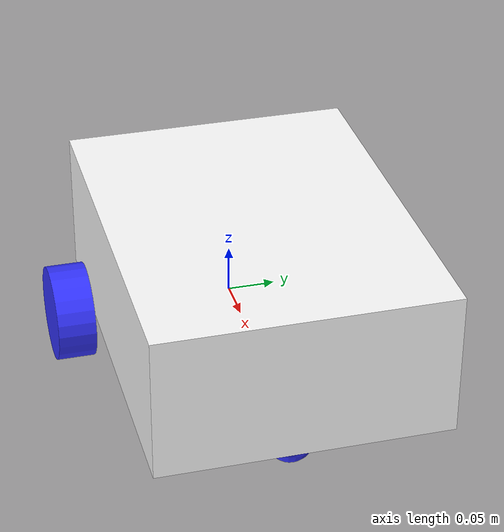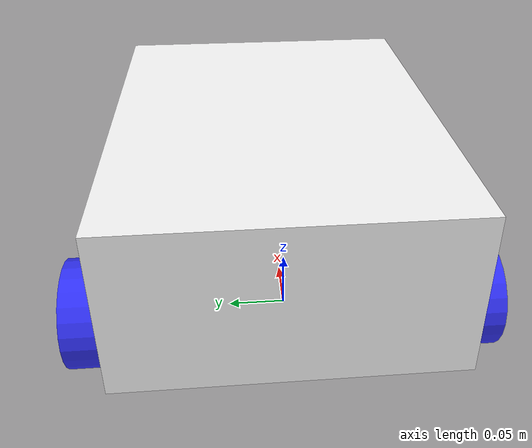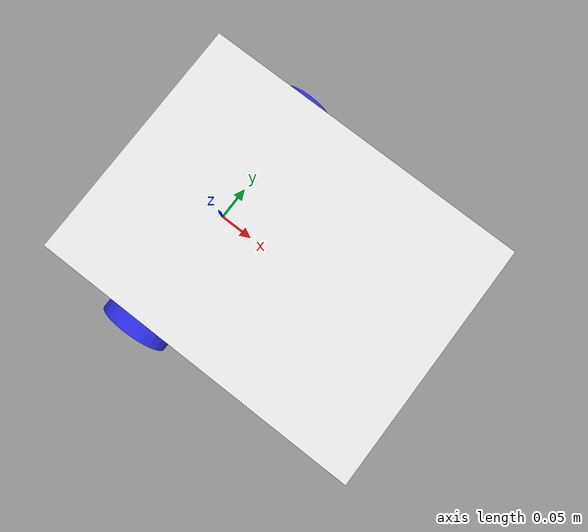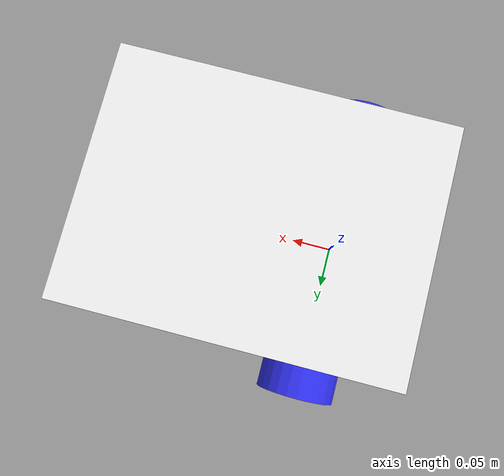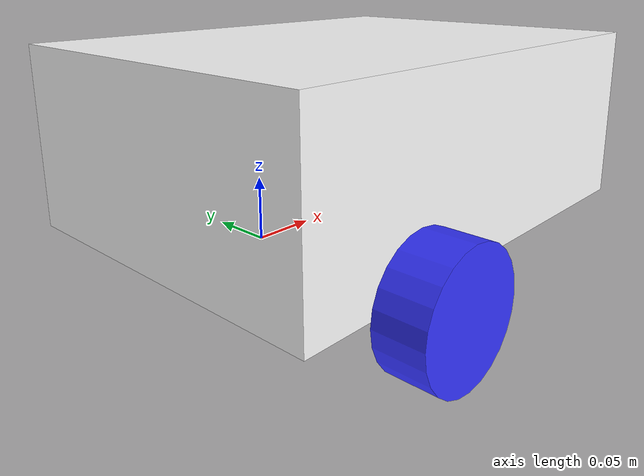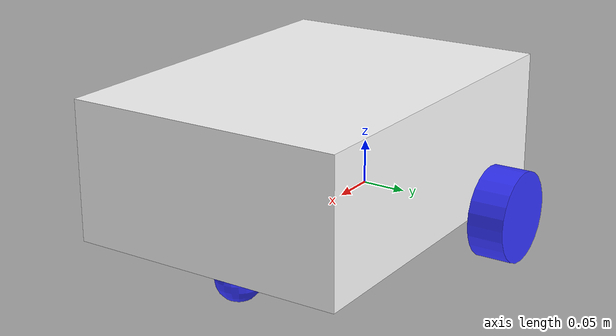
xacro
<?xml version="1.0"?>
<robot xmlns:xacro="http://www.ros.org/wiki/xacro">

    <xacro:include filename="inertial_macros.xacro"/>
<!-- MATIREALS -->
    <material name="white">
        <color rgba="1 1 1 1"/>
    </material>

    <material name="orange">
        <color rgba="1 0.3 0.1 1"/>
    </material>

    <material name="blue">
        <color rgba="0.2 0.2 1 1"/>
    </material>

    <material name="black">
        <color rgba="0 0 0 1"/>
    </material>

<!-- BASE LINK -->
    <link name="base_link" >
     </link>

        <!-- CHASSIS -->
    <link name="chassis">
        <visual>
            <geometry>
                <box size="0.4 0.3 0.15"/>
            </geometry>
            <origin xyz="0.2 0.0 0.075"/>
            <material name="white"/>
        </visual>
        <collision>
            <geometry>
                <box size="0.4 0.3 0.15"/>
            </geometry>
            <origin xyz="0.2 0.0 0.075"/>
        </collision>
        <xacro:inertial_box mass="0.5" x="0.4" y="0.3" z="0.15">
            <origin xyz="0.02 0 0.075" rpy="0.0 0.0 0.0"/>
        </xacro:inertial_box>
    </link>

    <gazebo reference="chassis">
        <material>Gazebo/White</material>
    </gazebo>

    <joint name="chassi_link_joint" type="fixed">
        <parent link="base_link"/>
        <child link="chassis"/>
        <origin xyz="-0.1 0.0 0.0"/>
    </joint>

        <!-- LEFT WHEEEL -->
    <link name="left_wheel">
        <visual>
        <geometry>
            <cylinder radius="0.05" length="0.04"/>
            </geometry>
            <material name="blue"/>
        </visual>
        <collision>
            <geometry>
                <cylinder radius="0.05" length="0.04"/>
            </geometry>
        </collision>
        <xacro:inertial_cylinder mass="0.1" length="0.04" radius="0.03">
            <origin xyz="0.0 0 0.0" rpy="0.0 0.0 0.0"/>
        </xacro:inertial_cylinder>
    </link>

    <gazebo reference="left_wheel">
        <material>Gazebo/Blue</material>
    </gazebo>

    <joint name="left_wheel_joint" type="continuous">
        <parent link="base_link"/>
        <child link="left_wheel"/>
        <origin xyz="0.0 0.175 0.0" rpy="-${pi/2} 0.0 0.0"/>
        <axis xyz="0.0 0.0 1"/>
    </joint>

        <!-- RIGHT WHEEL -->
    <link name="right_wheel">
        <visual>
            <geometry>
                <cylinder radius="0.05" length="0.04"/>
            </geometry>
            <material name="blue"/>
        </visual>
        <collision>
            <geometry>
                <cylinder radius="0.05" length="0.04"/>
            </geometry>
        </collision>
        <xacro:inertial_cylinder mass="0.1" length="0.04" radius="0.03">
            <origin xyz="0.0 0 0.0" rpy="0.0 0.0 0.0"/>
        </xacro:inertial_cylinder>
    </link>
    <gazebo reference="right_wheel">
        <material>Gazebo/Blue</material>
    </gazebo>

    <joint name="right_wheel_joint" type="continuous">
        <parent link="base_link"/>
        <child link="right_wheel"/>
        <origin xyz="0.0 -0.175 0.0" rpy="${pi/2} 0.0 0.0"/>
        <axis xyz="0.0 0.0 -1"/>
    </joint>

    <!-- CASTER WHEEL LINK -->
    <link name="caster_wheel">
        <visual>
            <geometry>
                <sphere radius="0.025"/>
            </geometry>
            <material name="blue"/>
        </visual>
        <collision>
            <geometry>
                <sphere radius="0.025"/>
            </geometry>
            <material name="blue"/>
        </collision>
        <xacro:inertial_sphere mass="0.2" radius="0.025">
            <origin xyz="0.0 0 0.0" rpy="0.0 0.0 0.0"/>
        </xacro:inertial_sphere>
    </link>
    <gazebo reference="caster_wheel">
        <material>Gazebo/Blue</material>
        <mu1 value="0.001"/>
        <mu2 value="0.001"/>
    </gazebo>

    <joint name="caster_wheel_joint" type="fixed">
        <parent link="base_link"/>
        <child link="caster_wheel"/>
        <origin xyz="0.24 0.0 -0.025" rpy="0.0 0.0 0.0"/>
    </joint>
</robot>
